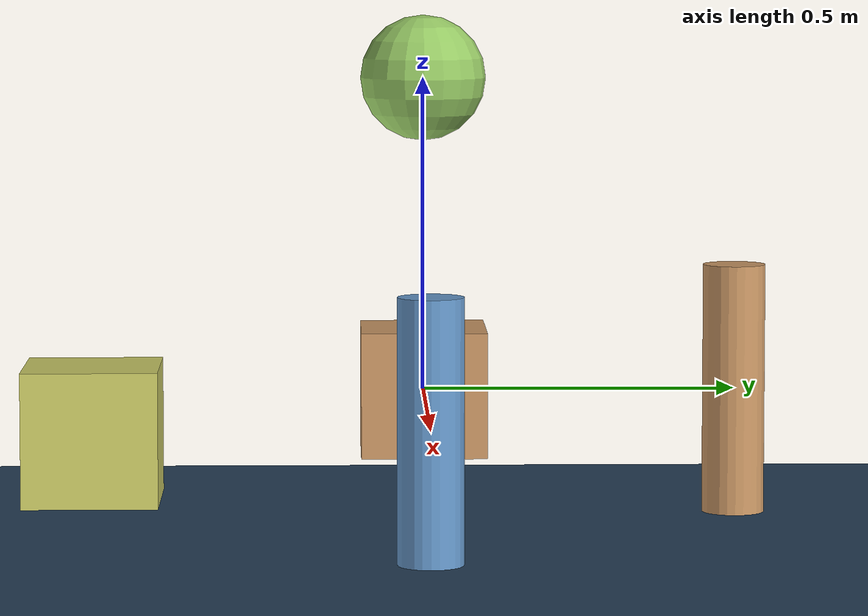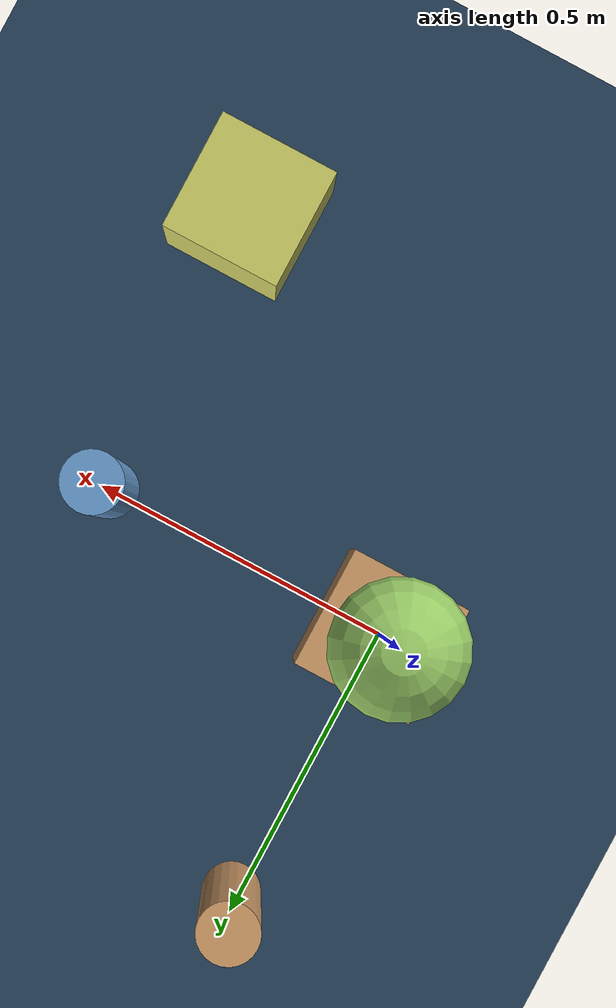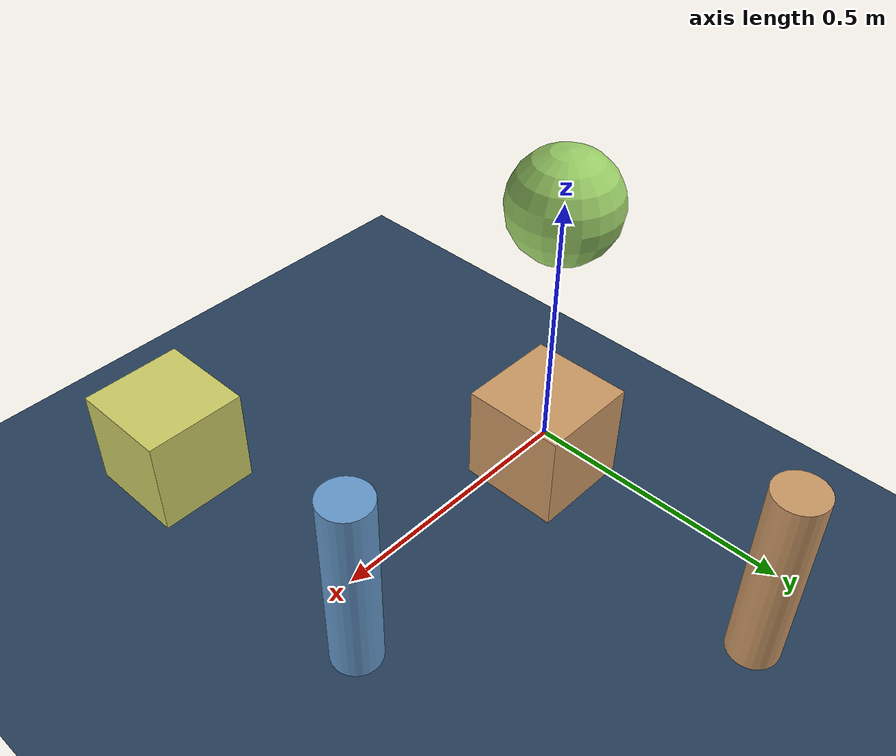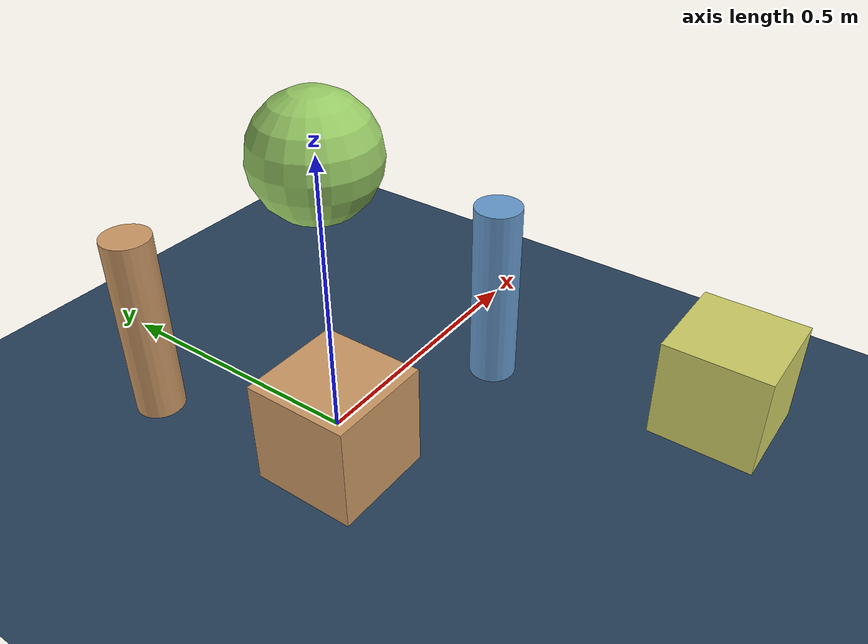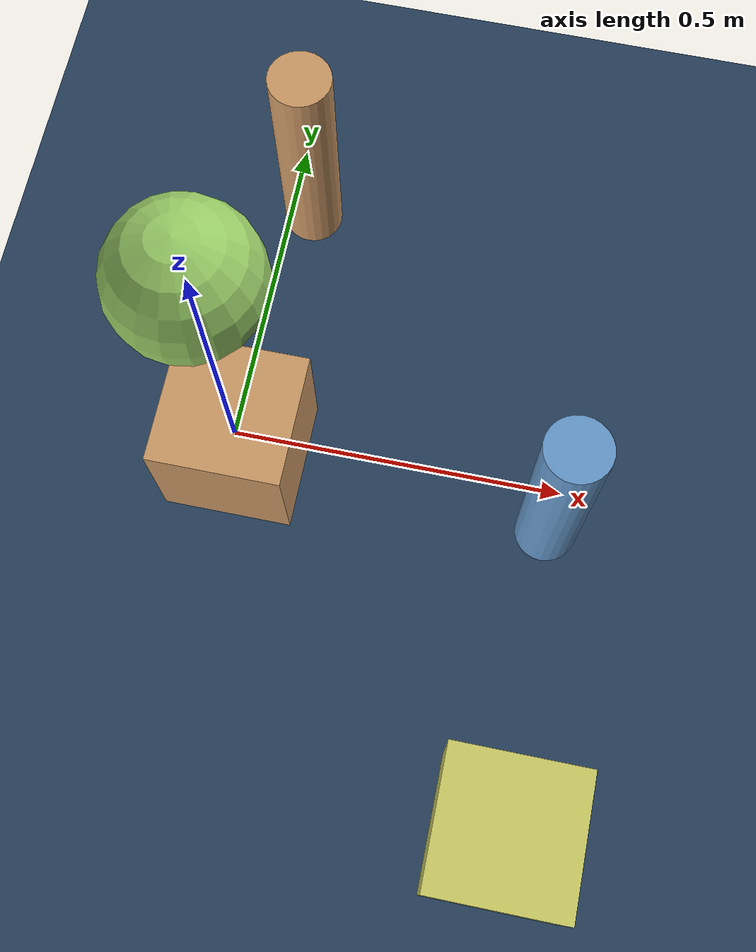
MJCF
<mujoco>
  <asset>
    <texture name="grid" type="2d" builtin="checker" rgb1=".1 .2 .3"
     rgb2=".2 .3 .4" width="300" height="300"/>
    <material name="grid" texture="grid" texrepeat="8 8" reflectance=".2"/>
  </asset>

    <worldbody>
        <geom size="3 1 .01" pos="0 0 -.2" type="plane" material="grid"/>
        <light name="top1" pos="1 0 1" diffuse="0.3 0.3 0.3"/>
        <light name="top2" pos="0 0 1" diffuse="0.3 0.3 0.3"/>
        <light name="top3" pos="2 0 1" diffuse="0.3 0.3 0.3"/>
        <!-- Base body -->
        <body name="base1" pos="0 0 0">
            <!-- Free joint -->
            <joint name=" free_joint" type="free"/>
            <geom name="base_geom" type="box" size="0.1 0.1 0.1" rgba="0.8 0.6 0.4 1"/>
        </body>
        <body name="base2" pos="0 0 0">
            <!-- Ball joint -->
            <body name="ball_joint_body" pos="0 0 0.5">
                <joint name="ball_joint" type="ball"/>
                <geom name="ball_geom" type="sphere" size="0.1" rgba="0.6 0.8 0.4 1"/>
            </body>

            <!-- Hinge joint -->
            <body name="hinge_joint_body" pos="0.5 0 0">
                <joint name="hinge_joint" type="hinge" axis="0 1 0"/>
                <geom name="hinge_geom" type="cylinder" size="0.05 0.2" rgba="0.4 0.6 0.8 1"/>
            </body>

            <!-- Slide joint -->
            <body name="slide_joint_body" pos="0 0.5 0">
                <joint name="slide_joint" type="slide" axis="1 0 0"/>
                <geom name="slide_geom" type="cylinder" size="0.05 0.2" rgba="0.8 0.6 0.4 1"/>
            </body>

            <!-- Planar joint -->
            <body name="planar_joint_body" pos="0.5 -0.5 0">
                <joint name="planar_joint" type="slide"/>
                <geom name="planar_geom" type="box" size="0.1 0.1 0.1" rgba="0.8 0.8 0.4 1"/>
            </body>
        </body>
    </worldbody>
</mujoco>
